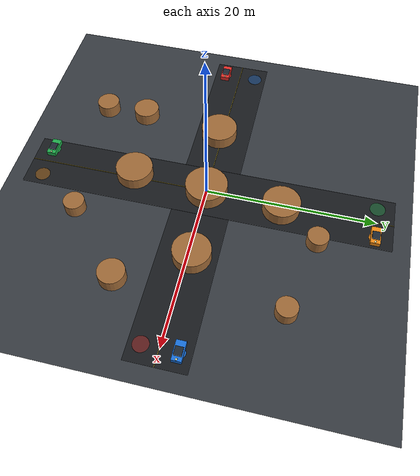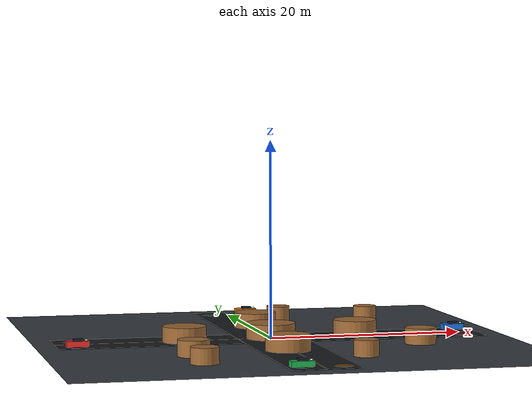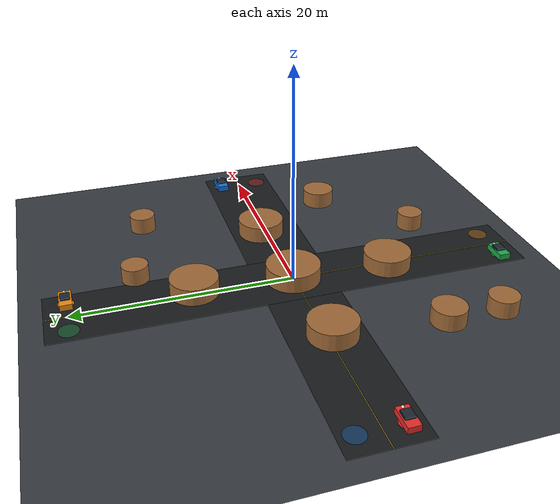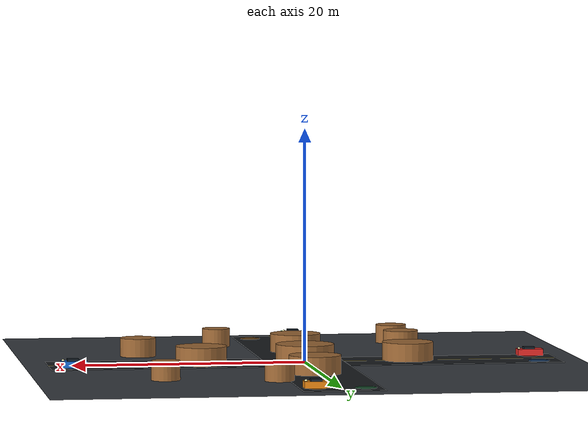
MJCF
<mujoco model="FedRMPC intersection">
  <compiler angle="radian" autolimits="true"/>
  <option timestep="0.01" gravity="0 0 0" integrator="RK4" iterations="80"/>
  <size nconmax="300" njmax="1000"/>
  <visual>
    <global offwidth="1000" offheight="1000"/>
    <quality shadowsize="4096" offsamples="4"/>
    <map znear="0.01" zfar="150" fogstart="80" fogend="120"/>
    <headlight ambient="0.48 0.48 0.48" diffuse="0.72 0.72 0.72" specular="0.25 0.25 0.25"/>
  </visual>
  <asset>
    <texture name="ground_tex" type="2d" builtin="checker" rgb1="0.19 0.21 0.23" rgb2="0.24 0.26 0.28" width="512" height="512"/>
    <material name="ground" texture="ground_tex" texrepeat="12 12" reflectance="0.05"/>
    <material name="obstacle" rgba="0.63 0.42 0.22 1" specular="0.15" shininess="0.25"/>
  </asset>
  <worldbody>
    <light pos="0 -10 35" dir="0 0 -1" directional="true" diffuse="0.85 0.85 0.82"/>
    <geom name="ground" type="plane" size="24 24 0.1" material="ground" contype="0" conaffinity="0"/>
    <geom name="road_h" type="box" pos="0 0 0.015" size="22 3.4 0.015" rgba="0.10 0.11 0.12 1" contype="0" conaffinity="0"/>
    <geom name="road_v" type="box" pos="0 0 0.017" size="3.4 22 0.015" rgba="0.10 0.11 0.12 1" contype="0" conaffinity="0"/>
    <geom type="box" pos="0 -0.05 0.045" size="22 0.035 0.012" rgba="0.95 0.82 0.20 0.75" contype="0" conaffinity="0"/>
    <geom type="box" pos="-0.05 0 0.047" size="0.035 22 0.012" rgba="0.95 0.82 0.20 0.75" contype="0" conaffinity="0"/>
    <geom name="obstacle_0" type="cylinder" pos="-9.000000 -0.500000 0.80" size="2.200000 0.80" material="obstacle" contype="1" conaffinity="2"/><geom name="obstacle_1" type="cylinder" pos="9.000000 0.500000 0.80" size="2.200000 0.80" material="obstacle" contype="1" conaffinity="2"/><geom name="obstacle_2" type="cylinder" pos="-0.500000 -9.000000 0.80" size="2.200000 0.80" material="obstacle" contype="1" conaffinity="2"/><geom name="obstacle_3" type="cylinder" pos="0.500000 9.000000 0.80" size="2.200000 0.80" material="obstacle" contype="1" conaffinity="2"/><geom name="obstacle_4" type="cylinder" pos="0.000000 0.000000 0.80" size="2.500000 0.80" material="obstacle" contype="1" conaffinity="2"/><geom name="obstacle_5" type="cylinder" pos="5.835260 -14.277727 0.80" size="1.221198 0.80" material="obstacle" contype="1" conaffinity="2"/><geom name="obstacle_6" type="cylinder" pos="-10.100102 -10.371011 0.80" size="1.546652 0.80" material="obstacle" contype="1" conaffinity="2"/><geom name="obstacle_7" type="cylinder" pos="13.547040 -7.149619 0.80" size="1.550865 0.80" material="obstacle" contype="1" conaffinity="2"/><geom name="obstacle_8" type="cylinder" pos="4.158087 13.677032 0.80" size="1.227550 0.80" material="obstacle" contype="1" conaffinity="2"/><geom name="obstacle_9" type="cylinder" pos="-10.101184 -15.523363 0.80" size="1.359123 0.80" material="obstacle" contype="1" conaffinity="2"/><geom name="obstacle_10" type="cylinder" pos="13.347922 11.670088 0.80" size="1.219979 0.80" material="obstacle" contype="1" conaffinity="2"/>
    <site name="start_0" type="cylinder" pos="-20.0 -2.0 0.035" size="0.70 0.025" rgba="0.920 0.180 0.160 1.000"/><site name="goal_0" type="cylinder" pos="20.0 -2.0 0.040" size="0.90 0.030" rgba="0.920 0.180 0.160 0.35"/><site name="start_1" type="cylinder" pos="20.0 2.0 0.035" size="0.70 0.025" rgba="0.100 0.450 0.880 1.000"/><site name="goal_1" type="cylinder" pos="-20.0 2.0 0.040" size="0.90 0.030" rgba="0.100 0.450 0.880 0.35"/><site name="start_2" type="cylinder" pos="-2.0 -20.0 0.035" size="0.70 0.025" rgba="0.120 0.680 0.300 1.000"/><site name="goal_2" type="cylinder" pos="-2.0 20.0 0.040" size="0.90 0.030" rgba="0.120 0.680 0.300 0.35"/><site name="start_3" type="cylinder" pos="2.0 20.0 0.035" size="0.70 0.025" rgba="0.950 0.550 0.080 1.000"/><site name="goal_3" type="cylinder" pos="2.0 -20.0 0.040" size="0.90 0.030" rgba="0.950 0.550 0.080 0.35"/>

            <body name="vehicle_0" pos="-20.0 -2.0 0.38">
              <joint name="vehicle_0_x" type="slide" axis="1 0 0" limited="true" range="-44 44"/>
              <joint name="vehicle_0_y" type="slide" axis="0 1 0" limited="true" range="-44 44"/>
              <joint name="vehicle_0_yaw" type="hinge" axis="0 0 1" damping="80"/>
              <geom name="vehicle_0_body" type="box" size="1.10 0.55 0.28" mass="1000"
                    rgba="0.920 0.180 0.160 1.000" contype="2" conaffinity="1" friction="1.0 0.02 0.002"/>
              <geom type="box" pos="0.10 0 0.34" size="0.48 0.43 0.12" mass="1"
                    rgba="0.12 0.16 0.20 1" contype="0" conaffinity="0"/>
              <site name="vehicle_0_nose" type="sphere" pos="0.92 0 0.30" size="0.12"
                    rgba="1 1 0.75 1"/>
            </body>

            <body name="vehicle_1" pos="20.0 2.0 0.38">
              <joint name="vehicle_1_x" type="slide" axis="1 0 0" limited="true" range="-44 44"/>
              <joint name="vehicle_1_y" type="slide" axis="0 1 0" limited="true" range="-44 44"/>
              <joint name="vehicle_1_yaw" type="hinge" axis="0 0 1" damping="80"/>
              <geom name="vehicle_1_body" type="box" size="1.10 0.55 0.28" mass="1000"
                    rgba="0.100 0.450 0.880 1.000" contype="2" conaffinity="1" friction="1.0 0.02 0.002"/>
              <geom type="box" pos="0.10 0 0.34" size="0.48 0.43 0.12" mass="1"
                    rgba="0.12 0.16 0.20 1" contype="0" conaffinity="0"/>
              <site name="vehicle_1_nose" type="sphere" pos="0.92 0 0.30" size="0.12"
                    rgba="1 1 0.75 1"/>
            </body>

            <body name="vehicle_2" pos="-2.0 -20.0 0.38">
              <joint name="vehicle_2_x" type="slide" axis="1 0 0" limited="true" range="-44 44"/>
              <joint name="vehicle_2_y" type="slide" axis="0 1 0" limited="true" range="-44 44"/>
              <joint name="vehicle_2_yaw" type="hinge" axis="0 0 1" damping="80"/>
              <geom name="vehicle_2_body" type="box" size="1.10 0.55 0.28" mass="1000"
                    rgba="0.120 0.680 0.300 1.000" contype="2" conaffinity="1" friction="1.0 0.02 0.002"/>
              <geom type="box" pos="0.10 0 0.34" size="0.48 0.43 0.12" mass="1"
                    rgba="0.12 0.16 0.20 1" contype="0" conaffinity="0"/>
              <site name="vehicle_2_nose" type="sphere" pos="0.92 0 0.30" size="0.12"
                    rgba="1 1 0.75 1"/>
            </body>

            <body name="vehicle_3" pos="2.0 20.0 0.38">
              <joint name="vehicle_3_x" type="slide" axis="1 0 0" limited="true" range="-44 44"/>
              <joint name="vehicle_3_y" type="slide" axis="0 1 0" limited="true" range="-44 44"/>
              <joint name="vehicle_3_yaw" type="hinge" axis="0 0 1" damping="80"/>
              <geom name="vehicle_3_body" type="box" size="1.10 0.55 0.28" mass="1000"
                    rgba="0.950 0.550 0.080 1.000" contype="2" conaffinity="1" friction="1.0 0.02 0.002"/>
              <geom type="box" pos="0.10 0 0.34" size="0.48 0.43 0.12" mass="1"
                    rgba="0.12 0.16 0.20 1" contype="0" conaffinity="0"/>
              <site name="vehicle_3_nose" type="sphere" pos="0.92 0 0.30" size="0.12"
                    rgba="1 1 0.75 1"/>
            </body>

  </worldbody>
  <actuator>
    <motor name="vehicle_0_fx" joint="vehicle_0_x" gear="1" ctrllimited="true" ctrlrange="-12000 12000"/><motor name="vehicle_0_fy" joint="vehicle_0_y" gear="1" ctrllimited="true" ctrlrange="-12000 12000"/><motor name="vehicle_0_tau" joint="vehicle_0_yaw" gear="1" ctrllimited="true" ctrlrange="-6000 6000"/><motor name="vehicle_1_fx" joint="vehicle_1_x" gear="1" ctrllimited="true" ctrlrange="-12000 12000"/><motor name="vehicle_1_fy" joint="vehicle_1_y" gear="1" ctrllimited="true" ctrlrange="-12000 12000"/><motor name="vehicle_1_tau" joint="vehicle_1_yaw" gear="1" ctrllimited="true" ctrlrange="-6000 6000"/><motor name="vehicle_2_fx" joint="vehicle_2_x" gear="1" ctrllimited="true" ctrlrange="-12000 12000"/><motor name="vehicle_2_fy" joint="vehicle_2_y" gear="1" ctrllimited="true" ctrlrange="-12000 12000"/><motor name="vehicle_2_tau" joint="vehicle_2_yaw" gear="1" ctrllimited="true" ctrlrange="-6000 6000"/><motor name="vehicle_3_fx" joint="vehicle_3_x" gear="1" ctrllimited="true" ctrlrange="-12000 12000"/><motor name="vehicle_3_fy" joint="vehicle_3_y" gear="1" ctrllimited="true" ctrlrange="-12000 12000"/><motor name="vehicle_3_tau" joint="vehicle_3_yaw" gear="1" ctrllimited="true" ctrlrange="-6000 6000"/>
  </actuator>
</mujoco>
